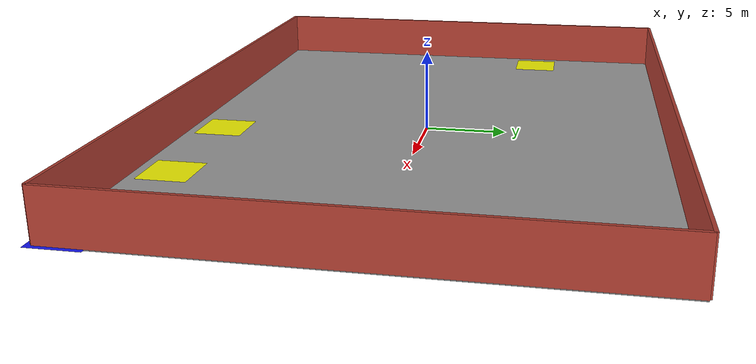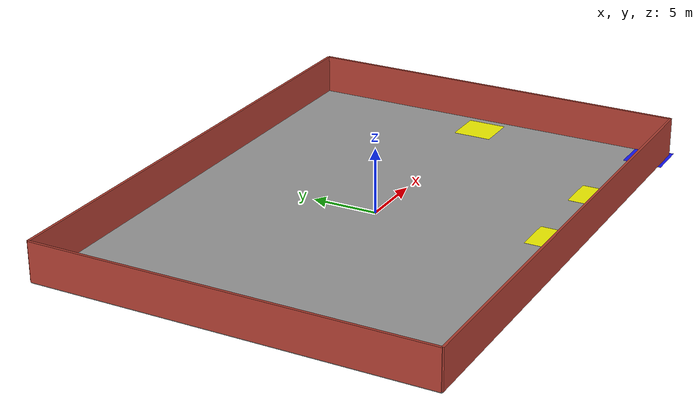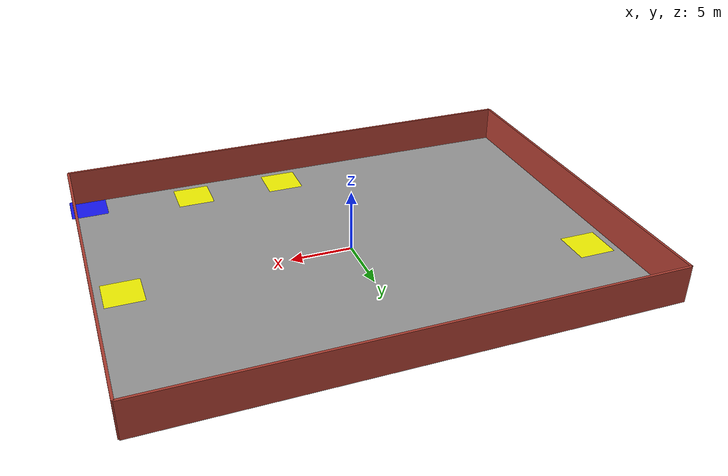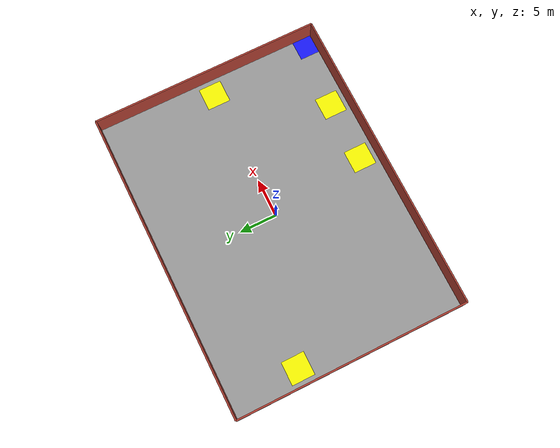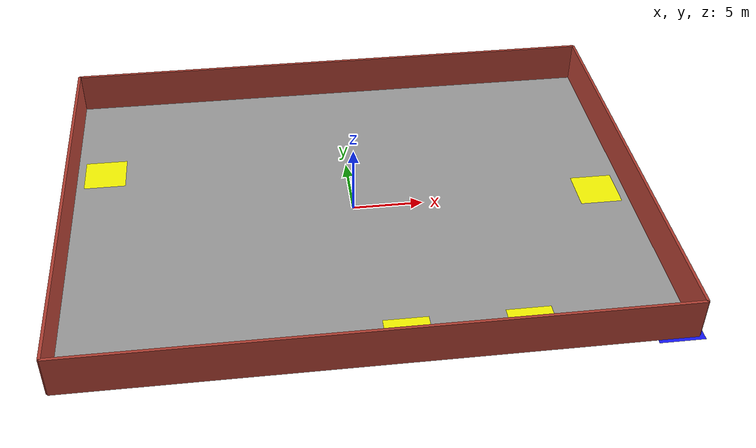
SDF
<?xml version="1.0" ?>
<sdf version="1.10">
  <world name="empty">
    <gravity>0 0 -9.81</gravity>
    <render_engine>ogre2</render_engine>
    <ambient>0.45 0.45 0.45 1</ambient>

    <!-- Ljus -->
    <light name="sun" type="directional">
      <pose>0 0 12 0 0 0</pose>
      <diffuse>1 1 1 1</diffuse>
      <specular>0.1 0.1 0.1 1</specular>
      <direction>-0.4 0.2 -1</direction>
      <cast_shadows>true</cast_shadows>
    </light>

    <!-- Golv: 40 x 30 m betongplatta (slät, ingen textur) -->
    <!-- Boxens topp ligger vid z=0 -->
    <model name="floor">
      <static>true</static>
      <pose>0 0 -0.05 0 0 0</pose>
      <link name="link">
        <collision name="col">
          <geometry><box><size>40 30 0.10</size></box></geometry>
        </collision>
        <visual name="vis">
          <geometry><box><size>40 30 0.10</size></box></geometry>
          <material>
            <ambient>0.62 0.62 0.62 1</ambient>
            <diffuse>0.62 0.62 0.62 1</diffuse>
            <specular>0.02 0.02 0.02 1</specular>
            <pbr><metal><metalness>0.0</metalness><roughness>0.9</roughness></metal></pbr>
          </material>
        </visual>
      </link>
    </model>

    <!-- Väggar: tjocklek 0.2 m, höjd 3.0 m -->
    <!-- Innerväggarnas plan ligger vid x=±19.9, y=±14.9 -->
    <model name="wall_front">
      <static>true</static>
      <pose>0 15 1.5 0 0 0</pose>
      <link name="link">
        <collision name="c"><geometry><box><size>40 0.2 3.0</size></box></geometry></collision>
        <visual name="v">
          <geometry><box><size>40 0.2 3.0</size></box></geometry>
          <material><ambient>0.60 0.20 0.20 1</ambient><diffuse>0.70 0.25 0.20 1</diffuse><specular>0.02 0.02 0.02 1</specular><pbr><metal><metalness>0.0</metalness><roughness>0.85</roughness></metal></pbr></material>
        </visual>
      </link>
    </model>

    <model name="wall_back">
      <static>true</static>
      <pose>0 -15 1.5 0 0 0</pose>
      <link name="link">
        <collision name="c"><geometry><box><size>40 0.2 3.0</size></box></geometry></collision>
        <visual name="v">
          <geometry><box><size>40 0.2 3.0</size></box></geometry>
          <material><ambient>0.60 0.20 0.20 1</ambient><diffuse>0.70 0.25 0.20 1</diffuse><specular>0.02 0.02 0.02 1</specular><pbr><metal><metalness>0.0</metalness><roughness>0.85</roughness></metal></pbr></material>
        </visual>
      </link>
    </model>

    <model name="wall_left">
      <static>true</static>
      <pose>-20 0 1.5 0 0 0</pose>
      <link name="link">
        <collision name="c"><geometry><box><size>0.2 30 3.0</size></box></geometry></collision>
        <visual name="v">
          <geometry><box><size>0.2 30 3.0</size></box></geometry>
          <material><ambient>0.60 0.20 0.20 1</ambient><diffuse>0.70 0.25 0.20 1</diffuse><specular>0.02 0.02 0.02 1</specular><pbr><metal><metalness>0.0</metalness><roughness>0.85</roughness></metal></pbr></material>
        </visual>
      </link>
    </model>

    <model name="wall_right">
      <static>true</static>
      <pose>20 0 1.5 0 0 0</pose>
      <link name="link">
        <collision name="c"><geometry><box><size>0.2 30 3.0</size></box></geometry></collision>
        <visual name="v">
          <geometry><box><size>0.2 30 3.0</size></box></geometry>
          <material><ambient>0.60 0.20 0.20 1</ambient><diffuse>0.70 0.25 0.20 1</diffuse><specular>0.02 0.02 0.02 1</specular><pbr><metal><metalness>0.0</metalness><roughness>0.85</roughness></metal></pbr></material>
        </visual>
      </link>
    </model>

    <!-- GULA FYRKANTER -->
    <!-- A) Hörnruta: 2x2 m. Gör den 2.1 m och skjut 5 cm in så den ser helt flush ut. -->
    <!-- Innerhörn (x=+19.9, y=-14.9) -> center (19.9-1.05, -14.9+1.05) = (18.85, -13.85) -->
    <model name="mark_corner_SE_2m">
      <static>true</static>
      <pose>18.85 -13.85 0.002 0 0 0</pose>
      <link name="link">
        <visual name="square_fill">
          <geometry><box><size>3.0 3.0 0.0001</size></box></geometry>
          <material><ambient>1.0 0.9 0.0 1</ambient><diffuse>0.1 0.1 1.0 1</diffuse></material>
        </visual>
      </link>
    </model>

    <!-- B) Mitt på golvet (exempel): 3x3 m -->
    <model name="coil_collection">
      <static>true</static>
      <pose>-17.85 6 0.002 0 0 0</pose>
      <link name="link">
        <visual name="square_fill">
          <geometry><box><size>3.0 3.0 0.0001</size></box></geometry>
          <material><ambient>1.0 0.9 0.0 1</ambient><diffuse>1.0 1.0 0.0 1</diffuse></material>
        </visual>
      </link>
    </model>

    <!--Unloading Station-->
    <model name="coil_unloading">
      <static>true</static>
      <pose>2 -12.85 0.002 0 0 0</pose>
      <link name="link">
        <visual name="square_fill">
          <geometry><box><size>3.0 3.0 0.0001</size></box></geometry>
          <material><ambient>1.0 0.9 0.0 1</ambient><diffuse> 1.0 1.0 0.0 1</diffuse></material>
        </visual>
      </link>
    </model>

    <!--Weighing Station-->
    <model name="weighing_tagmarking_station">
      <static>true</static>
      <pose>10 -12.85 0.002 0 0 0</pose>
      <link name="link">
        <visual name="square_fill">
          <geometry><box><size>3.0 3.0 0.0001</size></box></geometry>
          <material><ambient>1.0 0.9 0.0 1</ambient><diffuse>1.0 1.0 0.0 1</diffuse></material>
        </visual>
      </link>
    </model>

    <!--Compacting Station-->
    <model name="compacting_station">
      <static>true</static>
      <pose>17.85 0.0 0.002 0 0 0</pose>
      <link name="link">
        <visual name="square_fill">
          <geometry><box><size>3.0 3.0 0.0001</size></box></geometry>
          <material><ambient>1.0 0.9 0.0 1</ambient><diffuse>1.0 1.0 0.0 1</diffuse></material>
        </visual>
      </link>
    </model>

    <!--UTSEENDE, inställningar vid uppstart -->
    <gui fullscreen="0">
      <!-- sätter kameravyn -->
      <plugin filename="GzScene3D" name="3D View">
        <engine>ogre2</engine>
        <!-- x y z roll pitch yaw-->
        <camera_pose>0 0 25   0 1.57 1.57</camera_pose>
      </plugin>
    </gui>

  </world>
</sdf>
